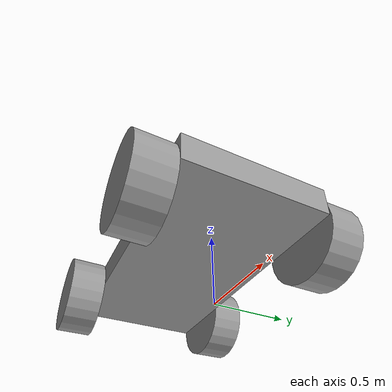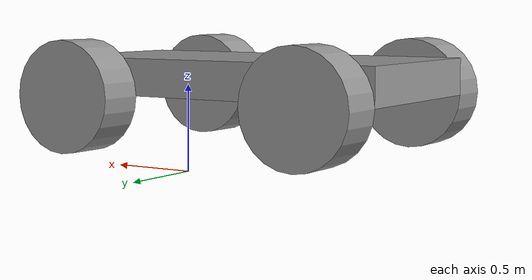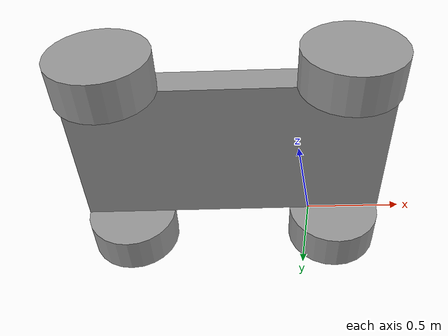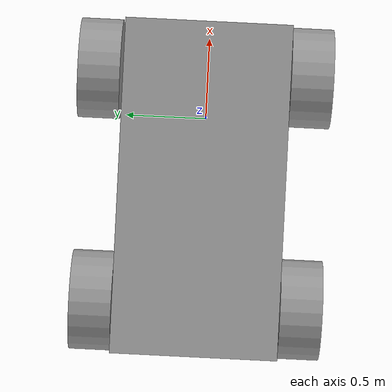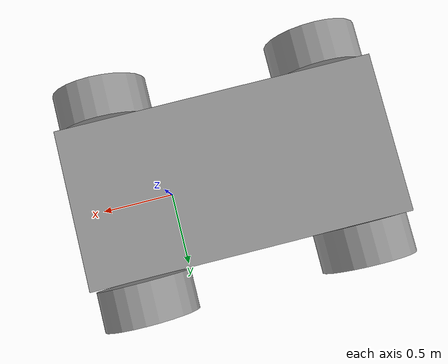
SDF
<?xml version='1.0'?>
<sdf version='1.7'>
  <model name='Senior_project'>
    <link name='link_4'>
      <inertial>
        <mass>0.38822</mass>
        <inertia>
          <ixx>0.0335677</ixx>
          <ixy>0</ixy>
          <ixz>0</ixz>
          <iyy>0.130951</iyy>
          <iyz>0</iyz>
          <izz>0.162086</izz>
        </inertia>
        <pose>0 0 0 0 -0 0</pose>
      </inertial>
      <pose>-0.440443 0.007131 0.566667 0 -0 0</pose>
      <gravity>1</gravity>
      <self_collide>0</self_collide>
      <kinematic>0</kinematic>
      <enable_wind>0</enable_wind>
      <visual name='visual'>
        <pose>0 0 0 0 -0 0</pose>
        <geometry>
          <box>
            <size>2 1 0.2</size>
          </box>
        </geometry>
        <material>
          <lighting>1</lighting>
          <script>
            <uri>file://media/materials/scripts/gazebo.material</uri>
            <name>Gazebo/Grey</name>
          </script>
          <shader type='pixel'>
            <normal_map>__default__</normal_map>
          </shader>
          <ambient>0.3 0.3 0.3 1</ambient>
          <diffuse>0.7 0.7 0.7 1</diffuse>
          <specular>0.01 0.01 0.01 1</specular>
          <emissive>0 0 0 1</emissive>
        </material>
        <transparency>0</transparency>
        <cast_shadows>1</cast_shadows>
      </visual>
      <collision name='collision'>
        <laser_retro>0</laser_retro>
        <max_contacts>10</max_contacts>
        <pose>0 0 0 0 -0 0</pose>
        <geometry>
          <box>
            <size>2 1 0.2</size>
          </box>
        </geometry>
        <surface>
          <friction>
            <ode>
              <mu>1</mu>
              <mu2>1</mu2>
              <fdir1>0 0 0</fdir1>
              <slip1>0</slip1>
              <slip2>0</slip2>
            </ode>
            <torsional>
              <coefficient>1</coefficient>
              <patch_radius>0</patch_radius>
              <surface_radius>0</surface_radius>
              <use_patch_radius>1</use_patch_radius>
              <ode>
                <slip>0</slip>
              </ode>
            </torsional>
          </friction>
          <bounce>
            <restitution_coefficient>0</restitution_coefficient>
            <threshold>1e+06</threshold>
          </bounce>
          <contact>
            <collide_without_contact>0</collide_without_contact>
            <collide_without_contact_bitmask>1</collide_without_contact_bitmask>
            <collide_bitmask>1</collide_bitmask>
            <ode>
              <soft_cfm>0</soft_cfm>
              <soft_erp>0.2</soft_erp>
              <kp>1e+13</kp>
              <kd>1</kd>
              <max_vel>0.01</max_vel>
              <min_depth>0</min_depth>
            </ode>
            <bullet>
              <split_impulse>1</split_impulse>
              <split_impulse_penetration_threshold>-0.01</split_impulse_penetration_threshold>
              <soft_cfm>0</soft_cfm>
              <soft_erp>0.2</soft_erp>
              <kp>1e+13</kp>
              <kd>1</kd>
            </bullet>
          </contact>
        </surface>
      </collision>
    </link>
    <link name='link_5'>
      <inertial>
        <mass>1</mass>
        <inertia>
          <ixx>0.145833</ixx>
          <ixy>0</ixy>
          <ixz>0</ixz>
          <iyy>0.145833</iyy>
          <iyz>0</iyz>
          <izz>0.125</izz>
        </inertia>
        <pose>0 0 0 0 -0 0</pose>
      </inertial>
      <pose>0.259557 0.64716 0.466667 1.5707 -0 0</pose>
      <gravity>1</gravity>
      <self_collide>0</self_collide>
      <kinematic>0</kinematic>
      <enable_wind>0</enable_wind>
      <visual name='visual'>
        <pose>0 0 0 0 -0 0</pose>
        <geometry>
          <cylinder>
            <radius>0.3</radius>
            <length>0.25</length>
          </cylinder>
        </geometry>
        <material>
          <lighting>1</lighting>
          <script>
            <uri>file://media/materials/scripts/gazebo.material</uri>
            <name>Gazebo/Grey</name>
          </script>
          <shader type='pixel'>
            <normal_map>__default__</normal_map>
          </shader>
          <ambient>0.3 0.3 0.3 1</ambient>
          <diffuse>0.7 0.7 0.7 1</diffuse>
          <specular>0.01 0.01 0.01 1</specular>
          <emissive>0 0 0 1</emissive>
        </material>
        <transparency>0</transparency>
        <cast_shadows>1</cast_shadows>
      </visual>
      <collision name='collision'>
        <laser_retro>0</laser_retro>
        <max_contacts>10</max_contacts>
        <pose>0 0 0 0 -0 0</pose>
        <geometry>
          <cylinder>
            <radius>0.3</radius>
            <length>0.25</length>
          </cylinder>
        </geometry>
        <surface>
          <friction>
            <ode>
              <mu>1</mu>
              <mu2>1</mu2>
              <fdir1>0 0 0</fdir1>
              <slip1>0</slip1>
              <slip2>0</slip2>
            </ode>
            <torsional>
              <coefficient>1</coefficient>
              <patch_radius>0</patch_radius>
              <surface_radius>0</surface_radius>
              <use_patch_radius>1</use_patch_radius>
              <ode>
                <slip>0</slip>
              </ode>
            </torsional>
          </friction>
          <bounce>
            <restitution_coefficient>0</restitution_coefficient>
            <threshold>1e+06</threshold>
          </bounce>
          <contact>
            <collide_without_contact>0</collide_without_contact>
            <collide_without_contact_bitmask>1</collide_without_contact_bitmask>
            <collide_bitmask>1</collide_bitmask>
            <ode>
              <soft_cfm>0</soft_cfm>
              <soft_erp>0.2</soft_erp>
              <kp>1e+13</kp>
              <kd>1</kd>
              <max_vel>0.01</max_vel>
              <min_depth>0</min_depth>
            </ode>
            <bullet>
              <split_impulse>1</split_impulse>
              <split_impulse_penetration_threshold>-0.01</split_impulse_penetration_threshold>
              <soft_cfm>0</soft_cfm>
              <soft_erp>0.2</soft_erp>
              <kp>1e+13</kp>
              <kd>1</kd>
            </bullet>
          </contact>
        </surface>
      </collision>
    </link>
    <link name='link_5_clone'>
      <inertial>
        <mass>1</mass>
        <inertia>
          <ixx>0.145833</ixx>
          <ixy>0</ixy>
          <ixz>0</ixz>
          <iyy>0.145833</iyy>
          <iyz>0</iyz>
          <izz>0.125</izz>
        </inertia>
        <pose>0 0 0 0 -0 0</pose>
      </inertial>
      <pose>0.259557 -0.617898 0.466667 1.5707 -0 0</pose>
      <gravity>1</gravity>
      <self_collide>0</self_collide>
      <kinematic>0</kinematic>
      <enable_wind>0</enable_wind>
      <visual name='visual'>
        <pose>0 0 0 0 -0 0</pose>
        <geometry>
          <cylinder>
            <radius>0.3</radius>
            <length>0.25</length>
          </cylinder>
        </geometry>
        <material>
          <lighting>1</lighting>
          <script>
            <uri>file://media/materials/scripts/gazebo.material</uri>
            <name>Gazebo/Grey</name>
          </script>
          <shader type='pixel'>
            <normal_map>__default__</normal_map>
          </shader>
          <ambient>0.3 0.3 0.3 1</ambient>
          <diffuse>0.7 0.7 0.7 1</diffuse>
          <specular>0.01 0.01 0.01 1</specular>
          <emissive>0 0 0 1</emissive>
        </material>
        <transparency>0</transparency>
        <cast_shadows>1</cast_shadows>
      </visual>
      <collision name='collision'>
        <laser_retro>0</laser_retro>
        <max_contacts>10</max_contacts>
        <pose>0 0 0 0 -0 0</pose>
        <geometry>
          <cylinder>
            <radius>0.3</radius>
            <length>0.25</length>
          </cylinder>
        </geometry>
        <surface>
          <friction>
            <ode>
              <mu>1</mu>
              <mu2>1</mu2>
              <fdir1>0 0 0</fdir1>
              <slip1>0</slip1>
              <slip2>0</slip2>
            </ode>
            <torsional>
              <coefficient>1</coefficient>
              <patch_radius>0</patch_radius>
              <surface_radius>0</surface_radius>
              <use_patch_radius>1</use_patch_radius>
              <ode>
                <slip>0</slip>
              </ode>
            </torsional>
          </friction>
          <bounce>
            <restitution_coefficient>0</restitution_coefficient>
            <threshold>1e+06</threshold>
          </bounce>
          <contact>
            <collide_without_contact>0</collide_without_contact>
            <collide_without_contact_bitmask>1</collide_without_contact_bitmask>
            <collide_bitmask>1</collide_bitmask>
            <ode>
              <soft_cfm>0</soft_cfm>
              <soft_erp>0.2</soft_erp>
              <kp>1e+13</kp>
              <kd>1</kd>
              <max_vel>0.01</max_vel>
              <min_depth>0</min_depth>
            </ode>
            <bullet>
              <split_impulse>1</split_impulse>
              <split_impulse_penetration_threshold>-0.01</split_impulse_penetration_threshold>
              <soft_cfm>0</soft_cfm>
              <soft_erp>0.2</soft_erp>
              <kp>1e+13</kp>
              <kd>1</kd>
            </bullet>
          </contact>
        </surface>
      </collision>
    </link>
    <link name='link_5_clone_clone'>
      <inertial>
        <mass>1</mass>
        <inertia>
          <ixx>0.145833</ixx>
          <ixy>0</ixy>
          <ixz>0</ixz>
          <iyy>0.145833</iyy>
          <iyz>0</iyz>
          <izz>0.125</izz>
        </inertia>
        <pose>0 0 0 0 -0 0</pose>
      </inertial>
      <pose>-1.14044 -0.617898 0.466667 1.5707 -0 0</pose>
      <gravity>1</gravity>
      <self_collide>0</self_collide>
      <kinematic>0</kinematic>
      <enable_wind>0</enable_wind>
      <visual name='visual'>
        <pose>0 0 0 0 -0 0</pose>
        <geometry>
          <cylinder>
            <radius>0.3</radius>
            <length>0.25</length>
          </cylinder>
        </geometry>
        <material>
          <lighting>1</lighting>
          <script>
            <uri>file://media/materials/scripts/gazebo.material</uri>
            <name>Gazebo/Grey</name>
          </script>
          <shader type='pixel'>
            <normal_map>__default__</normal_map>
          </shader>
          <ambient>0.3 0.3 0.3 1</ambient>
          <diffuse>0.7 0.7 0.7 1</diffuse>
          <specular>0.01 0.01 0.01 1</specular>
          <emissive>0 0 0 1</emissive>
        </material>
        <transparency>0</transparency>
        <cast_shadows>1</cast_shadows>
      </visual>
      <collision name='collision'>
        <laser_retro>0</laser_retro>
        <max_contacts>10</max_contacts>
        <pose>0 0 0 0 -0 0</pose>
        <geometry>
          <cylinder>
            <radius>0.3</radius>
            <length>0.25</length>
          </cylinder>
        </geometry>
        <surface>
          <friction>
            <ode>
              <mu>1</mu>
              <mu2>1</mu2>
              <fdir1>0 0 0</fdir1>
              <slip1>0</slip1>
              <slip2>0</slip2>
            </ode>
            <torsional>
              <coefficient>1</coefficient>
              <patch_radius>0</patch_radius>
              <surface_radius>0</surface_radius>
              <use_patch_radius>1</use_patch_radius>
              <ode>
                <slip>0</slip>
              </ode>
            </torsional>
          </friction>
          <bounce>
            <restitution_coefficient>0</restitution_coefficient>
            <threshold>1e+06</threshold>
          </bounce>
          <contact>
            <collide_without_contact>0</collide_without_contact>
            <collide_without_contact_bitmask>1</collide_without_contact_bitmask>
            <collide_bitmask>1</collide_bitmask>
            <ode>
              <soft_cfm>0</soft_cfm>
              <soft_erp>0.2</soft_erp>
              <kp>1e+13</kp>
              <kd>1</kd>
              <max_vel>0.01</max_vel>
              <min_depth>0</min_depth>
            </ode>
            <bullet>
              <split_impulse>1</split_impulse>
              <split_impulse_penetration_threshold>-0.01</split_impulse_penetration_threshold>
              <soft_cfm>0</soft_cfm>
              <soft_erp>0.2</soft_erp>
              <kp>1e+13</kp>
              <kd>1</kd>
            </bullet>
          </contact>
        </surface>
      </collision>
    </link>
    <link name='link_5_clone_clone_0'>
      <inertial>
        <mass>1</mass>
        <inertia>
          <ixx>0.145833</ixx>
          <ixy>0</ixy>
          <ixz>0</ixz>
          <iyy>0.145833</iyy>
          <iyz>0</iyz>
          <izz>0.125</izz>
        </inertia>
        <pose>0 0 0 0 -0 0</pose>
      </inertial>
      <pose>-1.14044 0.63216 0.466667 1.5707 -0 0</pose>
      <gravity>1</gravity>
      <self_collide>0</self_collide>
      <kinematic>0</kinematic>
      <enable_wind>0</enable_wind>
      <visual name='visual'>
        <pose>0 0 0 0 -0 0</pose>
        <geometry>
          <cylinder>
            <radius>0.3</radius>
            <length>0.25</length>
          </cylinder>
        </geometry>
        <material>
          <lighting>1</lighting>
          <script>
            <uri>file://media/materials/scripts/gazebo.material</uri>
            <name>Gazebo/Grey</name>
          </script>
          <shader type='pixel'>
            <normal_map>__default__</normal_map>
          </shader>
          <ambient>0.3 0.3 0.3 1</ambient>
          <diffuse>0.7 0.7 0.7 1</diffuse>
          <specular>0.01 0.01 0.01 1</specular>
          <emissive>0 0 0 1</emissive>
        </material>
        <transparency>0</transparency>
        <cast_shadows>1</cast_shadows>
      </visual>
      <collision name='collision'>
        <laser_retro>0</laser_retro>
        <max_contacts>10</max_contacts>
        <pose>0 0 0 0 -0 0</pose>
        <geometry>
          <cylinder>
            <radius>0.3</radius>
            <length>0.25</length>
          </cylinder>
        </geometry>
        <surface>
          <friction>
            <ode>
              <mu>1</mu>
              <mu2>1</mu2>
              <fdir1>0 0 0</fdir1>
              <slip1>0</slip1>
              <slip2>0</slip2>
            </ode>
            <torsional>
              <coefficient>1</coefficient>
              <patch_radius>0</patch_radius>
              <surface_radius>0</surface_radius>
              <use_patch_radius>1</use_patch_radius>
              <ode>
                <slip>0</slip>
              </ode>
            </torsional>
          </friction>
          <bounce>
            <restitution_coefficient>0</restitution_coefficient>
            <threshold>1e+06</threshold>
          </bounce>
          <contact>
            <collide_without_contact>0</collide_without_contact>
            <collide_without_contact_bitmask>1</collide_without_contact_bitmask>
            <collide_bitmask>1</collide_bitmask>
            <ode>
              <soft_cfm>0</soft_cfm>
              <soft_erp>0.2</soft_erp>
              <kp>1e+13</kp>
              <kd>1</kd>
              <max_vel>0.01</max_vel>
              <min_depth>0</min_depth>
            </ode>
            <bullet>
              <split_impulse>1</split_impulse>
              <split_impulse_penetration_threshold>-0.01</split_impulse_penetration_threshold>
              <soft_cfm>0</soft_cfm>
              <soft_erp>0.2</soft_erp>
              <kp>1e+13</kp>
              <kd>1</kd>
            </bullet>
          </contact>
        </surface>
      </collision>
    </link>
    <joint name='link_4_JOINT_3' type='revolute'>
      <parent>link_4</parent>
      <child>link_5</child>
      <pose>0 0 0 0 -0 0</pose>
      <axis>
        <xyz>0 0 1</xyz>
        <limit>
          <lower>-1.79769e+308</lower>
          <upper>1.79769e+308</upper>
          <effort>-1</effort>
          <velocity>-1</velocity>
        </limit>
        <dynamics>
          <spring_reference>0</spring_reference>
          <spring_stiffness>0</spring_stiffness>
          <damping>0</damping>
        </dynamics>
      </axis>
      <physics>
        <ode>
          <limit>
            <cfm>0</cfm>
            <erp>0.2</erp>
          </limit>
          <suspension>
            <cfm>0</cfm>
            <erp>0.2</erp>
          </suspension>
        </ode>
      </physics>
    </joint>
    <joint name='link_4_JOINT_4' type='revolute'>
      <parent>link_4</parent>
      <child>link_5_clone</child>
      <pose>0 0 0 0 -0 0</pose>
      <axis>
        <xyz>0 0 1</xyz>
        <limit>
          <lower>-1.79769e+308</lower>
          <upper>1.79769e+308</upper>
          <effort>-1</effort>
          <velocity>-1</velocity>
        </limit>
        <dynamics>
          <spring_reference>0</spring_reference>
          <spring_stiffness>0</spring_stiffness>
          <damping>0</damping>
        </dynamics>
      </axis>
      <physics>
        <ode>
          <limit>
            <cfm>0</cfm>
            <erp>0.2</erp>
          </limit>
          <suspension>
            <cfm>0</cfm>
            <erp>0.2</erp>
          </suspension>
        </ode>
      </physics>
    </joint>
    <joint name='link_4_JOINT_5' type='revolute'>
      <parent>link_4</parent>
      <child>link_5_clone_clone_0</child>
      <pose>0 0 0 0 -0 0</pose>
      <axis>
        <xyz>0 0 1</xyz>
        <limit>
          <lower>-1.79769e+308</lower>
          <upper>1.79769e+308</upper>
          <effort>-1</effort>
          <velocity>-1</velocity>
        </limit>
        <dynamics>
          <spring_reference>0</spring_reference>
          <spring_stiffness>0</spring_stiffness>
          <damping>0</damping>
        </dynamics>
      </axis>
      <physics>
        <ode>
          <limit>
            <cfm>0</cfm>
            <erp>0.2</erp>
          </limit>
          <suspension>
            <cfm>0</cfm>
            <erp>0.2</erp>
          </suspension>
        </ode>
      </physics>
    </joint>
    <joint name='link_4_JOINT_7' type='revolute'>
      <parent>link_4</parent>
      <child>link_5_clone_clone</child>
      <pose>0 0 0 0 -0 0</pose>
      <axis>
        <xyz>0 0 1</xyz>
        <limit>
          <lower>-1.79769e+308</lower>
          <upper>1.79769e+308</upper>
          <effort>-1</effort>
          <velocity>-1</velocity>
        </limit>
        <dynamics>
          <spring_reference>0</spring_reference>
          <spring_stiffness>0</spring_stiffness>
          <damping>0</damping>
        </dynamics>
      </axis>
      <physics>
        <ode>
          <limit>
            <cfm>0</cfm>
            <erp>0.2</erp>
          </limit>
          <suspension>
            <cfm>0</cfm>
            <erp>0.2</erp>
          </suspension>
        </ode>
      </physics>
    </joint>
    <static>0</static>
    <allow_auto_disable>1</allow_auto_disable>
  </model>
</sdf>
